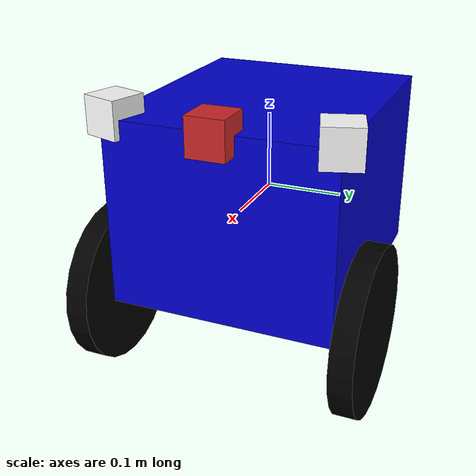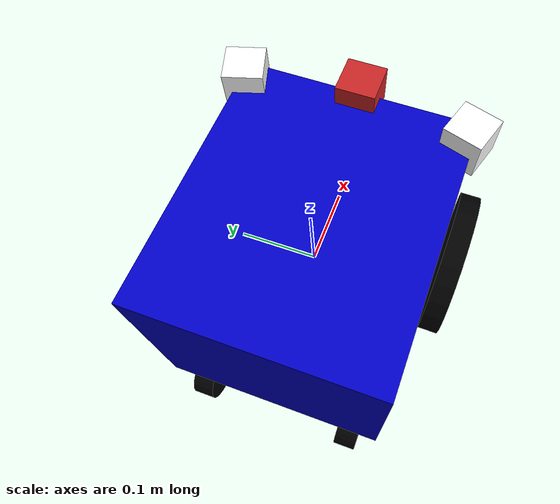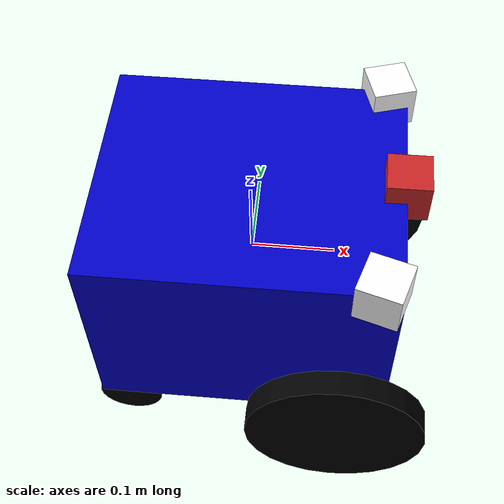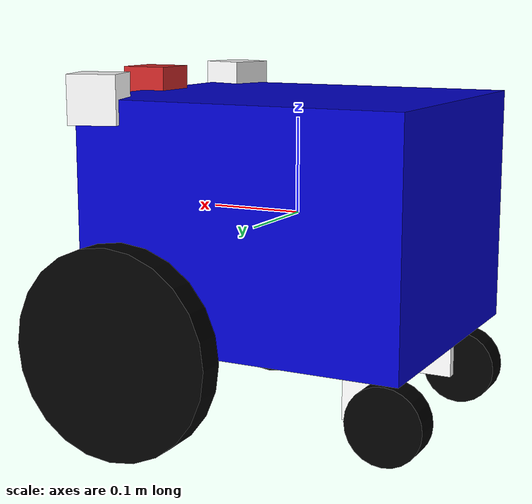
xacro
<?xml version="1.0"?>
<robot name="lmwr_diff_ultra_xacro" xmlns:xacro="http://ros.org/wiki/xacro">

  <xacro:property name="body_lenght" value="0.35" />
  <xacro:property name="body_width" value="0.3" />
  <xacro:property name="body_height" value="0.25" />
  <xacro:property name="traction_wheel_radius" value="0.11" />
  <xacro:property name="traction_wheel_width" value="0.03" />
  <xacro:property name="aux_wheel_radius" value="0.04" />
  <xacro:property name="aux_wheel_width" value="0.03" />
  <xacro:property name="support_lenght" value="0.6" />
  <xacro:property name="camera_link" value="0.05" />

  <xacro:include filename="materials.xacro" />
  <xacro:include filename="inertials.xacro" />

  <link name="main_body">
    <visual>
      <geometry>
        <box size="${body_lenght} ${body_width} ${body_height}"/>
      </geometry>
      <material name="blue"/>
    </visual>
    <collision>
      <geometry>
        <box size="${body_lenght} ${body_width} ${body_height}"/>
      </geometry>
    </collision>
  </link>

  <!-- Dummy link just for inertial purposes -->
  <link name="dummy_link">
    <visual>
      <geometry>
        <box size="0.05 0.05 0.05"/>
      </geometry>
      <origin xyz="0 0 0"/>
      <material name="white"/>
    </visual>
    <collision>
      <geometry>
        <box size="0.05 0.05 0.05"/>
      </geometry>
      <origin xyz="0 0 0"/>
    </collision>
    <xacro:inertial_cuboid mass="7" len="${body_lenght}" width="${body_width}" height="${body_height}" />
   </link>

  <joint name="dummy_base_joint" type="fixed">
    <axis rpy="0 0 0" xyz="0 0 1"/>
    <parent link="main_body"/>
    <child link="dummy_link"/>
    <origin xyz="0 0 0" />
  </joint>

  <xacro:macro name="front_sensor_sup_link" params="name y_pos z_pos angle_pan">
    <link name="${name}_front_sensor">
      <visual>
        <geometry>
          <box size="0.05 0.05 0.05"/>
        </geometry>
        <origin xyz="-0.025 0 0"/>
        <material name="white"/>
      </visual>
      <collision>
        <geometry>
          <box size="0.05 0.05 0.05"/>
        </geometry>
        <origin xyz="-0.025 0 0"/>
      </collision>
    </link>

    <joint name="${name}_front_sensor_joint" type="fixed">
      <axis rpy="0 0 0" xyz="0 0 1"/>
      <parent link="main_body"/>
      <child link="${name}_front_sensor"/>
      <origin xyz="${body_lenght/2} ${y_pos} ${z_pos}" rpy="0 0 ${angle_pan}" />
    </joint>

    <gazebo reference="${name}_front_sensor">
     <sensor type="ray" name="TeraRanger">
      <pose>0 0 0 0 0 0</pose>
      <visualize>true</visualize>
      <update_rate>50</update_rate>
      <ray>
         <scan>
            <horizontal>
               <samples>10</samples>
               <resolution>1</resolution>
               <min_angle>-0.14835</min_angle>
               <max_angle>0.14835</max_angle>
            </horizontal>
            <vertical>
               <samples>10</samples>
               <resolution>1</resolution>
               <min_angle>-0.14835</min_angle>
               <max_angle>0.14835</max_angle>
            </vertical>
         </scan>
         <range>
            <min>0.01</min>
            <max>2</max>
            <resolution>0.02</resolution>
         </range>
      </ray>
      <plugin filename="libgazebo_ros_range.so" name="gazebo_ros_range">
        <gaussianNoise>0.005</gaussianNoise>
        <alwaysOn>true</alwaysOn>
        <updateRate>50</updateRate>
        <topicName>sensor/${name}_ultrasonic_front</topicName>
        <frameName>${name}_front_sensor</frameName>
        <radiation>ULTRASOUND</radiation>
        <fov>0.2967</fov>
      </plugin>
     </sensor>
   </gazebo>

  </xacro:macro>

  <!-- Camera -->
  <link name="camera_link">
    <collision>
      <origin xyz="0 0 0" rpy="0 0 0"/>
      <geometry>
    <box size="${camera_link} ${camera_link} ${camera_link}"/>
      </geometry>
    </collision>

    <visual>
      <origin xyz="0 0 0" rpy="0 0 0"/>
      <geometry>
    <box size="${camera_link} ${camera_link} ${camera_link}"/>
      </geometry>
      <material name="red"/>
    </visual>

    <inertial>
      <mass value="1e-5" />
      <origin xyz="0 0 0" rpy="0 0 0"/>
      <inertia ixx="1e-6" ixy="0" ixz="0" iyy="1e-6" iyz="0" izz="1e-6" />
    </inertial>
  </link>

  <joint name="camera_joint" type="fixed">
    <axis xyz="0 1 0" />
    <origin xyz="${body_lenght/2} 0 0.125" rpy="0 0 0"/>
    <parent link="main_body"/>
    <child link="camera_link"/>
  </joint>

  <!-- camera -->
  <gazebo reference="camera_link">
    <sensor type="camera" name="camera1">
      <update_rate>30.0</update_rate>
      <camera name="head">
        <horizontal_fov>1.3962634</horizontal_fov>
        <image>
          <width>800</width>
          <height>800</height>
          <format>R8G8B8</format>
        </image>
        <clip>
          <near>0.02</near>
          <far>300</far>
        </clip>
        <noise>
          <type>gaussian</type>
          <!-- Noise is sampled independently per pixel on each frame.
               That pixel's noise value is added to each of its color
               channels, which at that point lie in the range [0,1]. -->
          <mean>0.0</mean>
          <stddev>0.007</stddev>
        </noise>
      </camera>
      <plugin name="camera_controller" filename="libgazebo_ros_camera.so">
        <alwaysOn>true</alwaysOn>
        <updateRate>0.0</updateRate>
        <cameraName>sensor/camera1</cameraName>
        <imageTopicName>image_raw</imageTopicName>
        <cameraInfoTopicName>camera_info</cameraInfoTopicName>
        <frameName>camera_link</frameName>
        <hackBaseline>0.07</hackBaseline>
        <distortionK1>0.0</distortionK1>
        <distortionK2>0.0</distortionK2>
        <distortionK3>0.0</distortionK3>
        <distortionT1>0.0</distortionT1>
        <distortionT2>0.0</distortionT2>
      </plugin>
    </sensor>
  </gazebo>

  <!-- IMU -->
  <gazebo>
    <plugin name="imu_plugin" filename="libgazebo_ros_imu.so">
      <alwaysOn>true</alwaysOn>
      <bodyName>main_body</bodyName>
      <topicName>imu</topicName>
      <serviceName>imu_service</serviceName>
      <gaussianNoise>0.0</gaussianNoise>
      <updateRate>20.0</updateRate>
    </plugin>
  </gazebo>

  <!-- GPS -->
  <gazebo>
    <plugin name="gps_controller" filename="libhector_gazebo_ros_gps.so">
      <alwayson>true</alwayson>
      <updaterate>1.0</updaterate>
      <bodyname>main_body</bodyname>
      <topicname>fix</topicname>
      <velocitytopicname>/fix_velocity</velocitytopicname>
      <drift>5.0 5.0 5.0</drift>
      <gaussiannoise>0.1 0.1 0.1</gaussiannoise>
      <velocitydrift>0 0 0</velocitydrift>
      <velocitygaussiannoise>0.1 0.1 0.1</velocitygaussiannoise>
    </plugin>
  </gazebo>

  <xacro:macro name="aux_wheel" params="side reflect">

    <link name="${side}_aux_wheel">
      <visual>
        <origin xyz="0 0 0" rpy="${pi/2} 0 0" />
        <geometry>
          <cylinder radius="${aux_wheel_radius}" length="${aux_wheel_width}"/>
        </geometry>
        <material name="black"/>
      </visual>
      <collision>
        <origin xyz="0 0 0" rpy="${pi/2} 0 0" />
        <geometry>
          <cylinder radius="${aux_wheel_radius}" length="${aux_wheel_width}"/>
        </geometry>
      </collision>
      <xacro:inertial_cylinder_y_axis mass="0.2" radius="${aux_wheel_radius}" height="${aux_wheel_width}" />
    </link>
    <joint name="${side}_aux_wheel_joint" type="continuous">
      <axis xyz="0 1 0" rpy="0 0 0" />
      <parent link="${side}_wheel_support"/>
      <child link="${side}_aux_wheel"/>
      <origin xyz="-0.05 ${reflect*0.01} -0.05" rpy="0 0 0"/>
    </joint>

    <!-- This block provides the simulator (Gazebo) with information on a few additional
    physical properties. See http://gazebosim.org/tutorials/?tut=ros_urdf for more-->
    <gazebo reference="${side}_aux_wheel">
      <mu1 value="100.0"/>
      <mu2 value="50.0"/>
      <kp value="10000000.0" />
      <kd value="1.0" />
      <material>Gazebo/Grey</material>
    </gazebo>

  </xacro:macro>

  <xacro:macro name="support" params="side displacement reflect">
    <link name="${side}_wheel_support">
      <visual>
        <geometry>
          <box size="0.05 0.01 0.06"/>
        </geometry>
        <origin xyz="-0.02 ${displacement} -0.03"/>
        <material name="white"/>
      </visual>
      <collision>
        <geometry>
          <box size="0.05 0.01 0.08"/>
        </geometry>
        <origin xyz="-0.02 ${displacement} -0.03"/>
      </collision>
      <xacro:inertial_cuboid mass="0.2" len="0.05" width="0.01" height="0.08" />
    </link>

    <joint name="${side}_base_joint" type="continuous">
      <axis rpy="0 0 0" xyz="0 0 1"/>
      <parent link="main_body"/>
      <child link="${side}_wheel_support"/>
      <origin xyz="-0.1 ${reflect*0.1} -0.125" />
      <dynamics damping="1" friction="0.1"/>
    </joint>
    <xacro:aux_wheel side="${side}"  reflect="${reflect}"/>

  </xacro:macro>

  <xacro:macro name="traction_wheel" params="side reflect">

    <link name="${side}_traction_wheel">
      <visual>
        <origin xyz="0 ${reflect*traction_wheel_width/2} 0" rpy="${pi/2} 0 0" />
        <geometry>
          <cylinder radius="${traction_wheel_radius}" length="${traction_wheel_width}"/>
        </geometry>
        <material name="black"/>
      </visual>
      <collision>
        <origin xyz="0 ${reflect*traction_wheel_width/2} 0" rpy="${pi/2} 0 0" />
        <geometry>
          <cylinder radius="${traction_wheel_radius}" length="${traction_wheel_width}"/>
        </geometry>
      </collision>
      <xacro:inertial_cylinder_y_axis mass="1" radius="${traction_wheel_radius}" height="${traction_wheel_width}" />
    </link>
    <joint name="${side}_traction_wheel_joint" type="continuous">
      <axis xyz="0 1 0" rpy="0 0 0" />
      <parent link="main_body"/>
      <child link="${side}_traction_wheel"/>
      <origin xyz="${body_lenght/3} ${reflect*(body_width/2+0.01)} ${-body_height/2}" rpy="0 0 0"/>
    </joint>

    <!-- This block provides the simulator (Gazebo) with information on a few additional
    physical properties. See http://gazebosim.org/tutorials/?tut=ros_urdf for more-->
    <gazebo reference="${side}_traction_wheel">
      <mu1 value="300.0"/>
      <mu2 value="100.0"/>
      <kp value="10000000.0" />
      <kd value="1.0" />
      <material>Gazebo/Grey</material>
    </gazebo>

    <!-- This block connects the wheel joint to an actuator (motor), which informs both
    simulation and visualization of the robot -->
    <transmission name="${side}_traction_wheel_trans">
      <type>transmission_interface/SimpleTransmission</type>
      <actuator name="${side}_traction_wheel_motor">
        <mechanicalReduction>1</mechanicalReduction>
      </actuator>
      <joint name="${side}_traction_wheel_joint">
        <hardwareInterface>hardware_interface/VelocityJointInterface</hardwareInterface>
      </joint>
    </transmission>

  </xacro:macro>

  <xacro:traction_wheel side="left" reflect="-1"/>
  <xacro:traction_wheel side="right" reflect="1"/>

  <xacro:support side="left" displacement="${traction_wheel_width/3}" reflect="-1" />
  <xacro:support side="right" displacement="${-traction_wheel_width/3}" reflect="1" />

  <xacro:front_sensor_sup_link name="ultra_1" y_pos="-0.15" z_pos="0.125" angle_pan="-0.3" />
  <xacro:front_sensor_sup_link name="ultra_2" y_pos="0.15" z_pos="0.125" angle_pan="0.3" />
  <xacro:front_sensor_sup_link name="ultra_center" y_pos="0" z_pos="0.08" angle_pan="0" />

  <!-- Gazebo plugin for ROS Control -->
  <gazebo>
    <plugin name="gazebo_ros_control" filename="libgazebo_ros_control.so">
      <robotNamespace>/</robotNamespace>
    </plugin>
  </gazebo>

</robot>

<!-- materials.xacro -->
<robot name="materials" xmlns:xacro="http://ros.org/wiki/xacro">

  <material name="blue">
    <color rgba="0 0 0.8 1"/>
  </material>

  <material name="black">
    <color rgba="0 0 0 1"/>
  </material>

  <material name="green">
    <color rgba="0 1 0 1"/>
  </material>

  <material name="grey">
    <color rgba=".2 .2 .2 1"/>
  </material>

  <material name="white">
    <color rgba="1 1 1 1"/>
  </material>

</robot>

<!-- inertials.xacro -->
<robot name="materials" xmlns:xacro="http://ros.org/wiki/xacro">

  <xacro:macro name="inertial_cuboid" params="mass len width height">
    <inertial>
      <mass value="${mass}" />
      <inertia ixx="${mass*(height*height+len*len)/12}" ixy="0.0" ixz="0.0" iyy="${mass*(width*width+len*len)/12}" iyz="0.0" izz="${mass*(width*width+height*height)/12}" />
    </inertial>
  </xacro:macro>

  <xacro:macro name="inertial_sphere" params="mass radius">
    <inertial>
      <mass value="${mass}" />
      <inertia ixx="${2*mass*radius*radius/5}" ixy="0.0" ixz="0.0" iyy="${2*mass*radius*radius/5}" iyz="0.0" izz="${2*mass*radius*radius/5}"/>
    </inertial>
  </xacro:macro>

  <!-- Inercial tensor of a cylinder with the radius in the xy plane) -->
  <xacro:macro name="inertial_cylinder" params="mass radius height">
    <inertial>
      <mass value="${mass}" />
      <inertia ixx="${mass*(3*radius*radius+height*height)/12}" ixy="0.0" ixz="0.0" iyy="${mass*(3*radius*radius+height*height)/12}" iyz="0.0" izz="${mass*radius*radius/2}" />
    </inertial>
  </xacro:macro>

  <!-- Inercial tensor of a cylinder rotating about y axis (i.e. wheels) -->
  <xacro:macro name="inertial_cylinder_y_axis" params="mass radius height">
    <inertial>
      <mass value="${mass}" />
      <inertia ixx="${mass*(3*radius*radius+height*height)/12}" ixy="0.0" ixz="0.0" iyy="${mass*radius*radius/2}" iyz="0.0" izz="${mass*(3*radius*radius+height*height)/12}" />
    </inertial>
  </xacro:macro>

</robot>
